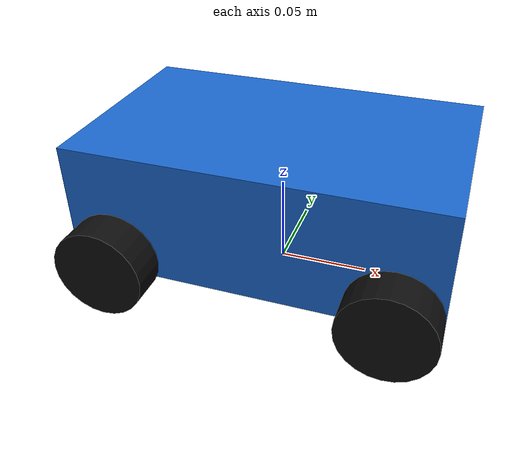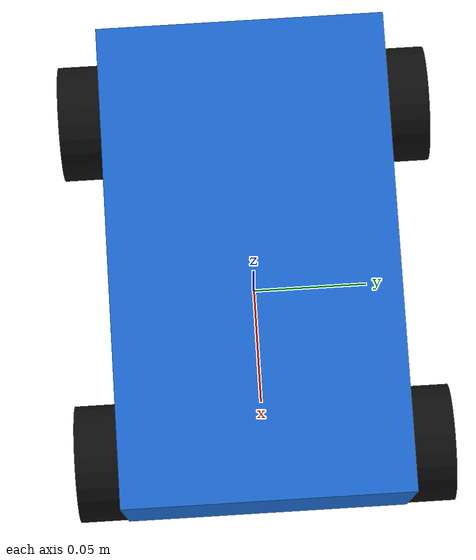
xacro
<?xml version="1.0"?>
<robot xmlns:xacro="http://wiki.ros.org/xacro">
    <xacro:property name="PI" value="3.1415927"/>
    <xacro:property name="base_length" value="0.20"/>
    <xacro:property name="base_width" value="0.12"/>
    <xacro:property name="base_height" value="0.07"/>
    <xacro:property name="ground_clearance" value="0.015"/>
    <xacro:property name="wheel_radius" value="0.025"/>
    <xacro:property name="wheel_width" value="0.02"/>

    <material name="chassis_blue">
        <color rgba="0.1 0.4 0.8 1.0"/>
    </material>

    <material name="wheel_black">
        <color rgba="0.05 0.05 0.05 1.0"/>
    </material>

    <material name="sensor_red">
        <color rgba="0.8 0.1 0.1 1.0"/>
    </material>

    <material name="lidar_blue">
        <color rgba="0.0 0.2 0.5 1.0"/>
    </material>

    <link name="base_footprint">
        <visual>
            <geometry>
                <sphere radius="0.001"/>
            </geometry>
            <material name="wheel_black"/>
        </visual>
    </link>

    <link name="base_link">
        <visual>
            <geometry>
                <box size="${base_length} ${base_width} ${base_height}"/>
            </geometry>
            <material name="chassis_blue"/>
        </visual>
    </link>

    <joint name="base_joint" type="fixed">
        <parent link="base_footprint"/>
        <child link="base_link"/>
        <origin xyz="0.0 0.0 ${ground_clearance + base_height / 2}" rpy="0.0 0.0 0.0"/>
    </joint>

    <xacro:macro name="wheel" params="wheel_name x_sign y_sign">
        <link name="${wheel_name}_wheel_link">
            <visual>
                <geometry>
                    <cylinder radius="${wheel_radius}" length="${wheel_width}"/>
                </geometry>
                <origin xyz="0.0 0.0 0.0" rpy="${PI / 2} 0.0 0.0"/>
                <material name="wheel_black"/>
            </visual>
        </link>

        <joint name="${wheel_name}_wheel_joint" type="continuous">
            <parent link="base_link"/>
            <child link="${wheel_name}_wheel_link"/>
            <origin
                xyz="${(base_length / 2 - wheel_radius) * x_sign} ${(base_width / 2 + wheel_width / 2) * y_sign} ${wheel_radius - ground_clearance - base_height / 2}"
                rpy="0.0 0.0 0.0"/>
            <axis xyz="0.0 1.0 0.0"/>
        </joint>
    </xacro:macro>

    <xacro:wheel wheel_name="front_left" x_sign="1" y_sign="1"/>
    <xacro:wheel wheel_name="front_right" x_sign="1" y_sign="-1"/>
    <xacro:wheel wheel_name="rear_left" x_sign="-1" y_sign="1"/>
    <xacro:wheel wheel_name="rear_right" x_sign="-1" y_sign="-1"/>
</robot>
